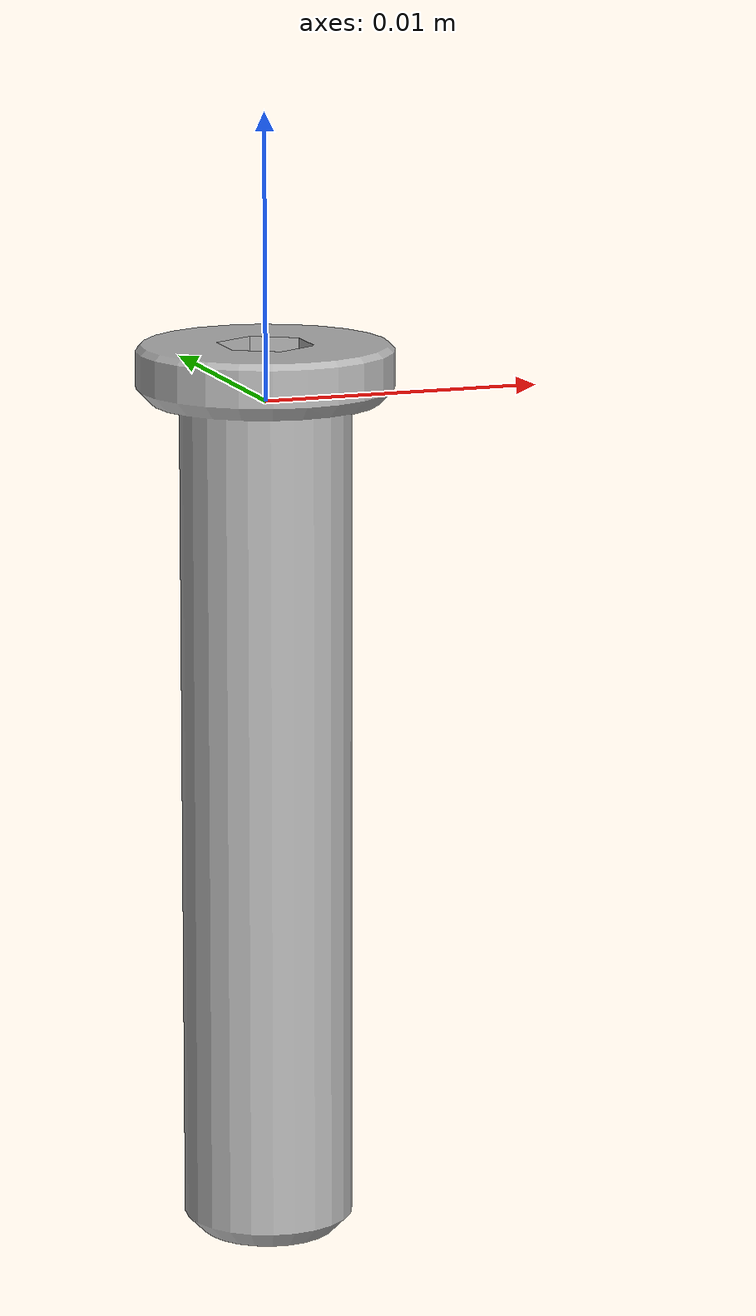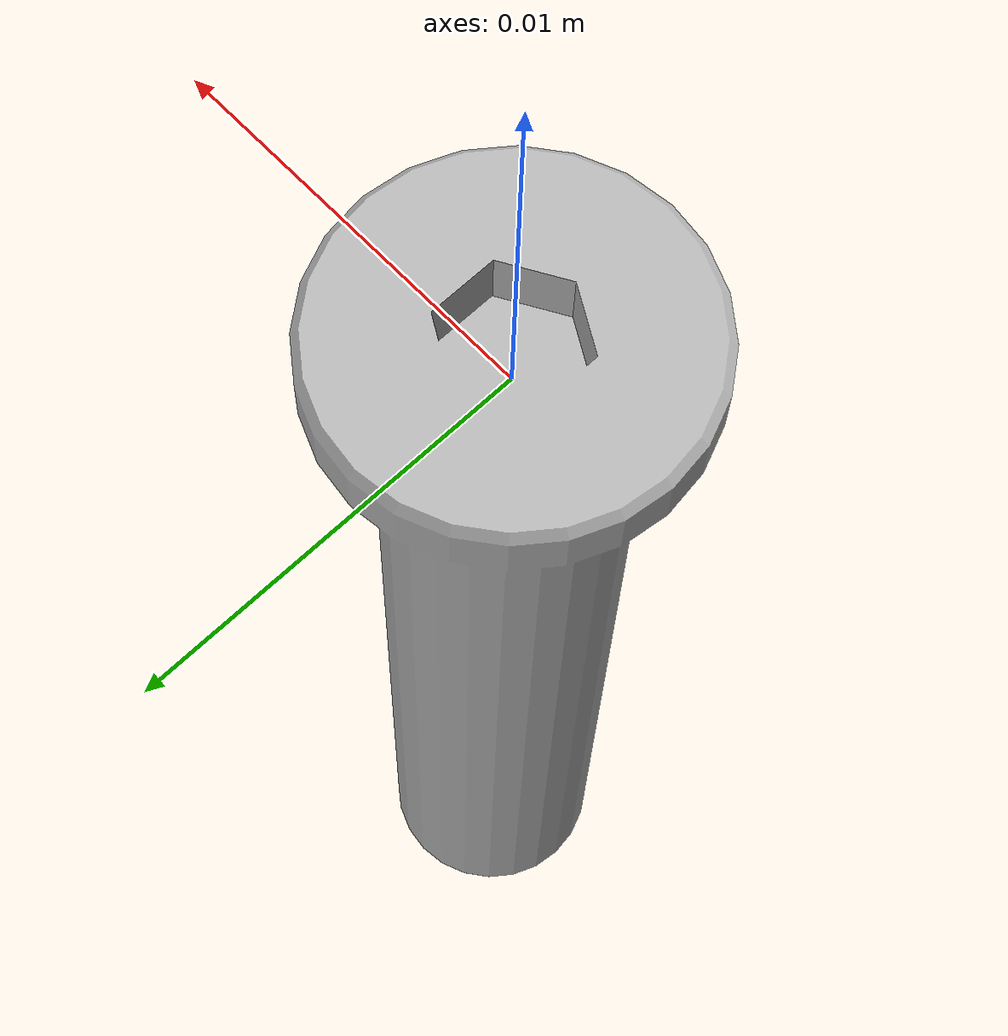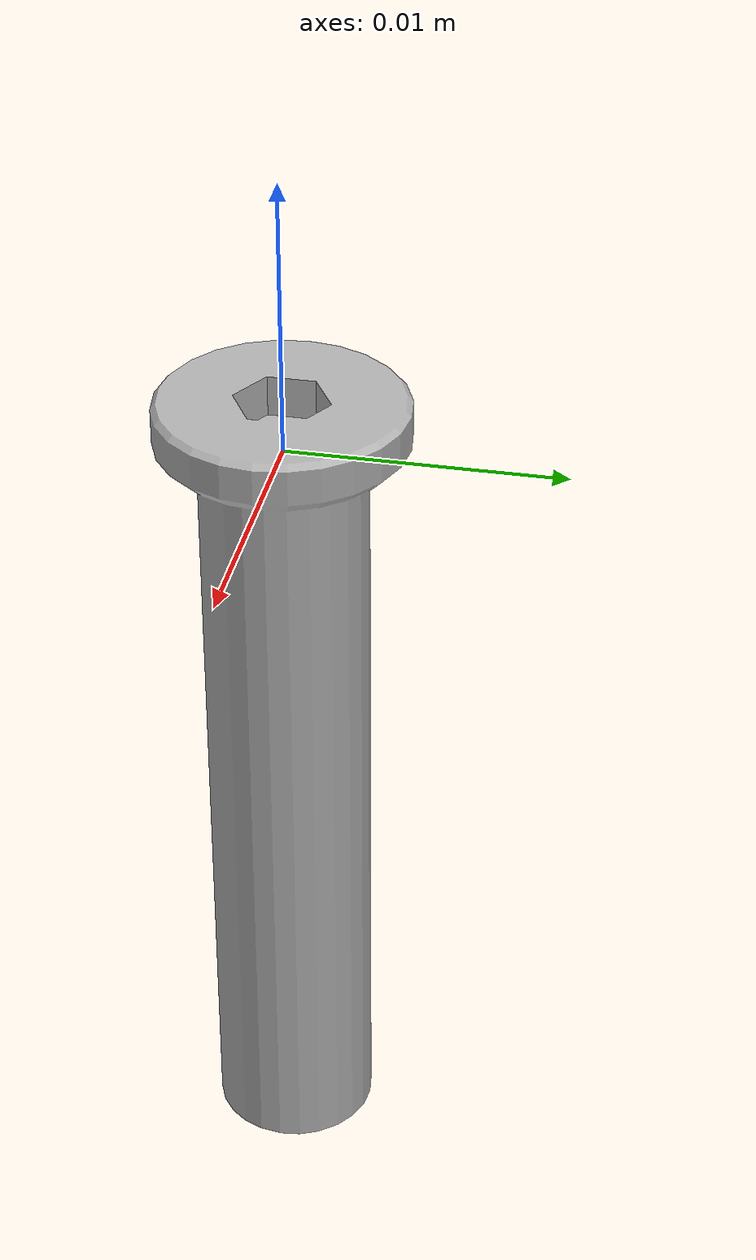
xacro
<?xml version="1.0"?>
<robot name="wrs_pin" xmlns:xacro="http://wiki.ros.org/xacro">

  <link name="pin_link">
    <inertial>
      <origin xyz="0 0 -0.013083" rpy="0 1.5708 0" />
      <mass value="0.007652" />
      <inertia ixx = "39.917e-09" ixy = "-2.567e-18" ixz = "0.00" iyx = "-2.567e-18" iyy = "723.648e-09" iyz = "0.00" izx = "0.00" izy = "0.00" izz = "723.648e-09" />
    </inertial>
    <visual>
      <origin xyz="0 0 0" rpy="0 1.5708 0"/>
      <geometry>
	<mesh filename="package://wrs_description/meshes/collision/BGPSL6-9-L30-F8.stl" scale="0.001 0.001 0.001"/>
      </geometry>
      <material name="gray">
	<color rgba="0.7 0.7 0.7 1"/>
      </material>
    </visual>
    <collision>
      <origin xyz="0 0 0" rpy="0 1.5708 0"/>
      <geometry>
	<mesh filename="package://wrs_description/meshes/collision/BGPSL6-9-L30-F8.stl" scale="0.001 0.001 0.001"/>
      </geometry>
    </collision>
  </link>

  <gazebo reference="pin_link">
    <visual>
      <material>
	<ambient>0.65 0.65 0.65 1.0</ambient>
	<diffuse>0.7 0.7 0.7 1.0</diffuse>
	<specular>0.9 0.9 0.9 1.0</specular>
	<emissive>0.0 0.0 0.0 0.0</emissive>
      </material>
    </visual>
  </gazebo>

</robot>
